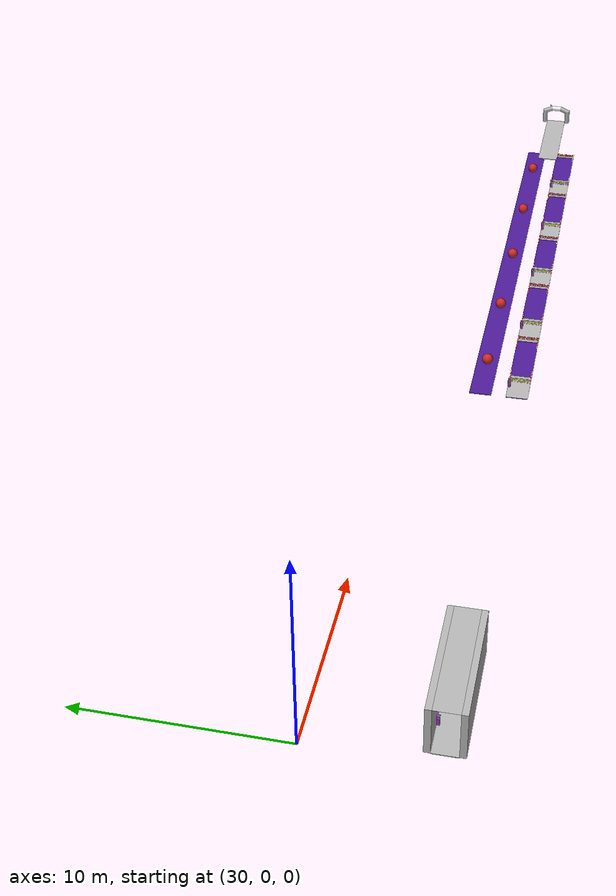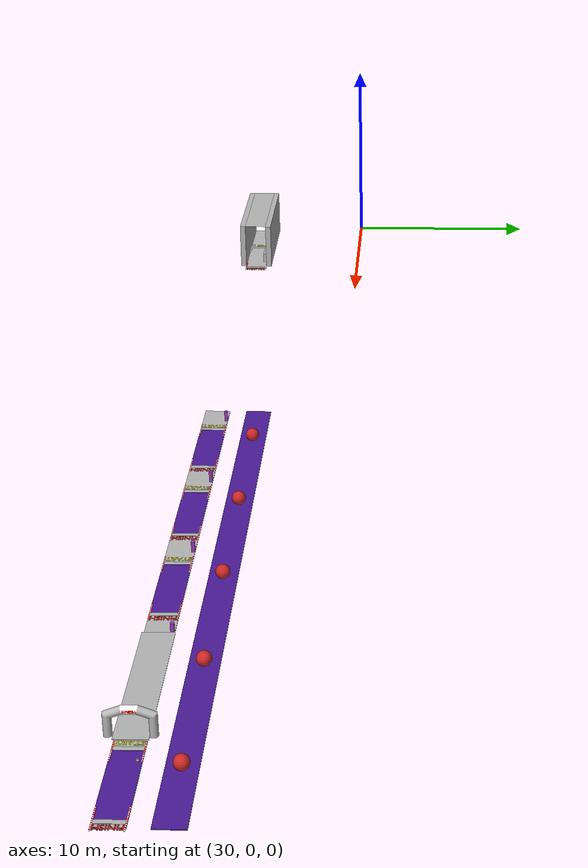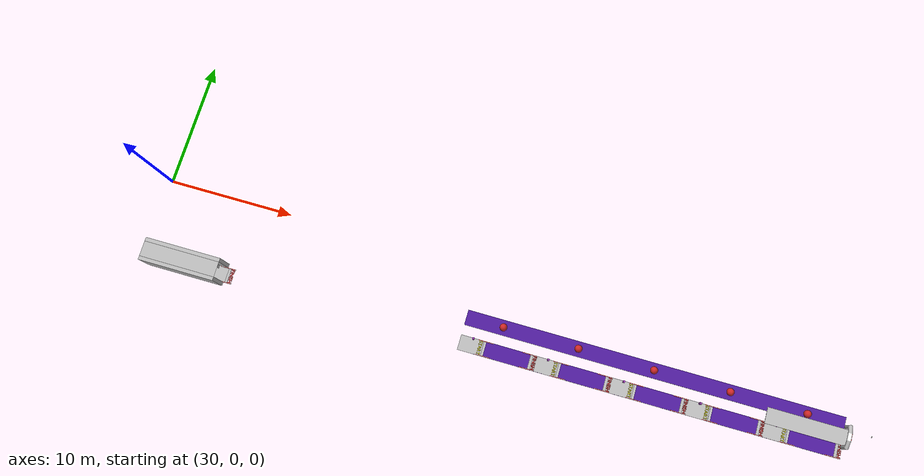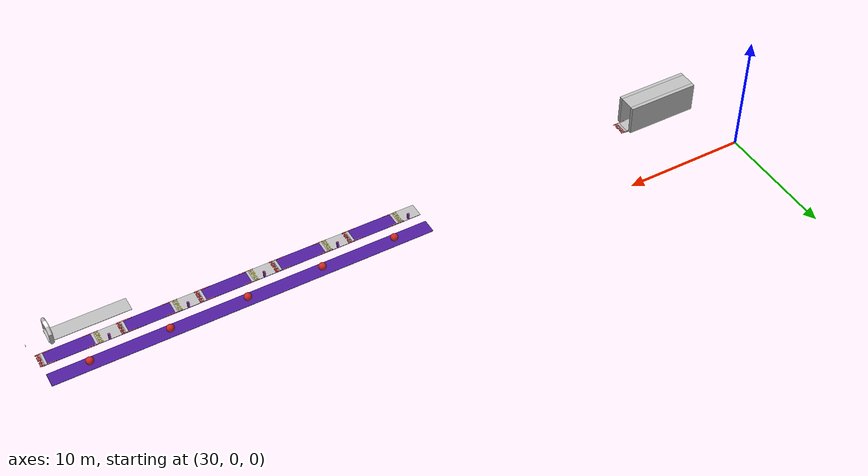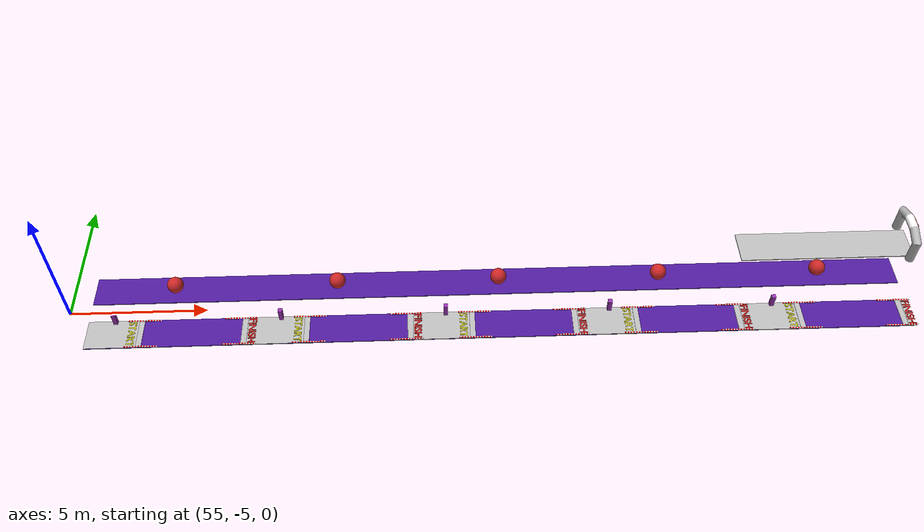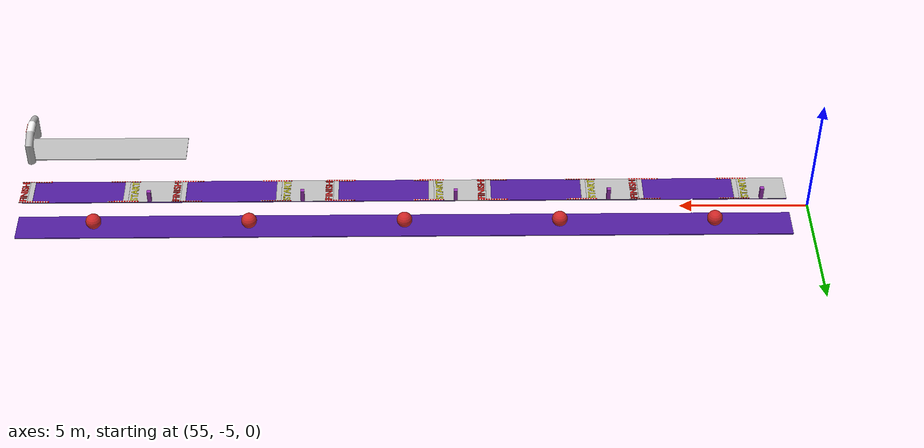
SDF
<sdf version="1.5">
 <world name="default">
  <scene>
   <sky><clouds><speed>3</speed></clouds></sky>
   <ambient>0.45 0.45 0.45 1</ambient>
   <background>0.65 0.65 0.65 1</background>
   <shadows>0</shadows>
  </scene>
  <include><uri>model://sun</uri></include>
  <include><name>ground1</name><pose>0 0 0.075 0 0 0</pose><uri>model://khnp_ground_plane</uri></include>
  <include><pose>30.6 -6 0 0 0 0</pose><uri>model://task_5_whole</uri></include>
  <include>
   <name>b1</name>
   <pose>34.6 -5.6 0.28 0 0 0</pose>
   <uri>model://box_manipulation,2,false_blue</uri>
  </include>
  <include>
   <name>b2</name>
   <pose>34.85 -5.6 0.28 0 0 0</pose>
   <uri>model://box_manipulation_2_true_yellow</uri>
  </include>
  <include>
   <name>b3</name>
   <pose>35.1 -5.6 0.28 0 0 0</pose>
   <uri>model://box_manipulation_2_false_red</uri>
  </include>
  <include>
   <name>b4</name>
   <pose>35.35 -5.6 0.28 0 0 0</pose>
   <uri>model://box_manipulation_2_false_orange</uri>
  </include>
  <include>
   <name>b5</name>
   <pose>35.6 -5.6 0.28 0 0 0</pose>
   <uri>model://box_manipulation_2_false_green</uri>
  </include>
  <include><name>ground2</name><pose>75.75 -6 0.055 0 0 0</pose><uri>model://khnp_ground_plane</uri></include>
  <include><pose>55.75 -6 0 0 0 0</pose><uri>model://task_3_whole</uri></include>
  <include><name>ds1</name><pose>58.75 -4 0.3 0 0 0</pose><uri>model://disturbance_sphere</uri></include>
  <include><name>ds2</name><pose>64.75 -4 0.3 0 0 0</pose><uri>model://disturbance_sphere</uri></include>
  <include><name>ds3</name><pose>70.75 -4 0.3 0 0 0</pose><uri>model://disturbance_sphere</uri></include>
  <include><name>ds4</name><pose>76.75 -4 0.3 0 0 0</pose><uri>model://disturbance_sphere</uri></include>
  <include><name>ds5</name><pose>82.75 -4 0.3 0 0 0</pose><uri>model://disturbance_sphere</uri></include>
  <include><name>finish_floor</name><pose>82 -5.2 2.968 0 0 0</pose><uri>model://floor_6m2</uri></include>
  <include><pose>84.8 -5.2 2.968 0 0 3.141592</pose><uri>model://last_finish</uri></include>
  <include><pose>86.55 -4.68 3.388 0 1.5708 0</pose><uri>model://finish_0_false</uri></include>
 </world>
</sdf>

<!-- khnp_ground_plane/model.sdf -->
<sdf version="1.5">
  <model name="khnp_ground_plane">
    <static>true</static>
    <link name="link">
      <pose>0 0 -0.1 0 0 0</pose>
      <collision name="collision">
        <geometry>
          <box>
            <size>40.0 40.0 0.1</size>
          </box>
        </geometry>
      </collision>
    </link>
  </model>
</sdf>

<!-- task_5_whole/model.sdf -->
<sdf version="1.5">
  <model name="task_5_whole">

    <include>
      <pose>1.5 0.52 0.42 0 1.5708 0</pose>
      <uri>model://manipulation_1_false</uri>
    </include>

    <include>
      <pose>3.8 0.36 0 0 0 0</pose>
      <uri>model://bookcase</uri>
    </include>

    <include>
      <name>w1</name>
      <pose>3 0.745 0 0 0 0</pose>
      <uri>model://indoorwall_6m</uri>
    </include>
    <include>
      <name>w2</name>
      <pose>3 -0.745 0 0 0 0</pose>
      <uri>model://indoorwall_6m</uri>
    </include>

    <include>
      <pose>3.0 0 0.005 0 0 0</pose>
      <uri>model://floor_6m</uri>
    </include>
    <include>
      <pose>3.0 0 0 0 0 0</pose>
      <uri>model://roof_6m</uri>
    </include>

    <include>
      <pose>1.575 0.525 0 0 0 0</pose>
      <uri>model://qr_pole</uri>
    </include>

    <include>
      <pose>2.5 0 0 0 0 -1.5708</pose>
      <uri>model://start_line</uri>
    </include>
    <include>
      <pose>5.5 0 0 0 0 -1.5708</pose>
      <uri>model://finish_line</uri>
    </include>

    <include>
      <pose>4.6 0 -0.02 0 0 0</pose>
      <uri>model://indoorfloor_3.4m</uri>
    </include>

  </model>
</sdf>

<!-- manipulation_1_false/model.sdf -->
<sdf version="1.5">
  <model name="manipulation_1_false">
    <static>true</static>
    <link name="link">
      <pose>0 0 0 0 0 0</pose>
      <collision name="collision">
        <geometry>
          <box>
            <size>0.1 0.1 0.01</size>
          </box>
        </geometry>
      </collision>
      <visual name="visual">
        <cast_shadows>false</cast_shadows>
        <geometry>
          <box>
            <size>0.1 0.1 0.01</size>
          </box>
        </geometry>
        <material>
          <script>
            <uri>model://manipulation_1_false/materials/scripts</uri>
            <uri>model://manipulation_1_false/materials/textures</uri>
            <name>vrc/manipulation_1_false</name>
          </script>
        </material>
      </visual>
    </link>
  </model>
</sdf>

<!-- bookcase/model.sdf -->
<sdf version="1.5">
  <model name="bookcase">
    <static>true</static>
    <pose>0 0 0 0 0 0</pose>
    <link name="link">
      <collision name="bookcaseC">
        <geometry>
          <mesh>
            <uri>model://bookcase/untitled.dae</uri>
            <scale>1.0 1.0 1.0</scale>
          </mesh>
        </geometry>
      </collision>
      <visual name="bookcaseV">
        <cast_shadows>false</cast_shadows>
        <geometry>
          <mesh>
            <uri>model://bookcase/untitled.dae</uri>
            <scale>1.0 1.0 1.0</scale>
          </mesh>
        </geometry>
      </visual>
    </link>
  </model>
</sdf>

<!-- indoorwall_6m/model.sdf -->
<sdf version="1.5">
  <model name="indoorwall_6m">
    <static>true</static>
    <link name="link">
      <pose>0 0 1.25 0 0 0</pose>
      <collision name="collision">
        <geometry>
          <box>
            <size>6.0 0.3 2.5</size>
          </box>
        </geometry>
      </collision>
      <visual name="visual">
        <cast_shadows>false</cast_shadows>
        <geometry>
          <box>
            <size>6.0 0.3 2.5</size>
          </box>
        </geometry>
        <material>
          <script>
            <uri>model://indoorwall_6m/materials/scripts</uri>
            <uri>model://indoorwall_6m/materials/textures</uri>
            <name>vrc/indoorwall_6m</name>
          </script>
        </material>
      </visual>
    </link>
  </model>
</sdf>

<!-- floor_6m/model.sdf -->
<sdf version="1.5">
  <model name="floor_6m">
    <static>true</static>
    <link name="link">
      <pose>0 0 -0.02 0 0 0</pose>
      <collision name="collision">
        <geometry>
          <box>
            <size>6.0 1.2 0.04</size>
          </box>
        </geometry>
      </collision>
      <visual name="visual">
        <geometry>
          <box>
            <size>6.0 1.2 0.04</size>
          </box>
        </geometry>
        <material>
          <script>
            <uri>model://floor_6m/materials/scripts</uri>
            <uri>model://floor_6m/materials/textures</uri>
            <name>vrc/floor_6m</name>
          </script>
        </material>
      </visual>
    </link>
  </model>
</sdf>

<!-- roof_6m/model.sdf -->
<sdf version='1.5'>
<model name='roof_6m'>
<static>true</static>
<link name="link">
   <pose frame=''>0 0 2.5 0 0 0</pose>
   <collision name='roof_firstC'>
    <geometry>
      <mesh>
        <scale>1.0 -1.0 1.0</scale>
        <uri>model://roof_6m/roof2.dae</uri>
      </mesh>
    </geometry>
  </collision>
  <visual name='roof_firstV'>
    <cast_shadows>false</cast_shadows>
    <geometry>
      <mesh>
        <scale>1.0 -1.0 1.0</scale>
        <uri>model://roof_6m/roof2.dae</uri>
      </mesh>
    </geometry>
  </visual>
</link>
</model>
</sdf>

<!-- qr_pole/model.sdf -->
<sdf version="1.5">
  <model name="qr_pole">
    <static>true</static>
    <link name="link">
      <pose>0 0 0.25 0 0 0</pose>
      <collision name="collision">
        <geometry>
          <box>
            <size>0.15 0.15 0.5</size>
          </box>
        </geometry>
      </collision>
      <visual name="visual">
        <cast_shadows>false</cast_shadows>
        <geometry>
          <box>
            <size>0.15 0.15 0.5</size>
          </box>
        </geometry>
        <material>
          <script>
            <uri>file://media/materials/scripts/gazebo.material</uri>
            <name>Gazebo/Purple</name>
          </script>
        </material>
      </visual>
    </link>
  </model>
</sdf>

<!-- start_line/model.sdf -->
<sdf version="1.5">
  <model name="start_line">

    <include>
      <name>start</name>
      <pose>-0.55 0 0 0 0 0</pose>
      <uri>model://start</uri>
    </include>
    <include>
      <name>line</name>
      <pose>0 0.45 0 0 0 0</pose>
      <uri>model://line</uri>
    </include>
    <include>
      <name>rline</name>
      <pose>-0.575 0.55 0.001 0 0 1.5708</pose>
      <uri>model://redline</uri>
    </include>
    <include>
      <name>rline2</name>
      <pose>0.575 0.55 0.001 0 0 1.5708</pose>
      <uri>model://redline</uri>
    </include>

  </model>
</sdf>

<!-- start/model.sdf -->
<sdf version='1.5'>
<model name='start'>
<static>true</static>
<link name="link">
   <pose frame=''>0 0 0.01 0 0 0</pose>
  <visual name='startV'>
    <cast_shadows>false</cast_shadows>
    <geometry>
      <mesh>
        <scale>1.0 1.0 1.0</scale>
        <uri>model://start/model.dae</uri>
      </mesh>
    </geometry>
    <material>
      <script>
        <name>start</name>
        <uri>model://start/model.dae</uri>
      </script>
    </material>
  </visual>
</link>
</model>
</sdf>

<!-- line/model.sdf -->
<sdf version='1.5'>
<model name='line'>
<static>true</static>
<link name="link">
   <pose frame=''>0 0 0.01 0 0 0</pose>
  <visual name='lineV'>
    <cast_shadows>false</cast_shadows>
    <geometry>
      <mesh>
        <scale>1.0 1.0 1.0</scale>
        <uri>model://line/line.dae</uri>
      </mesh>
    </geometry>
    <material>
      <script>
        <name>start</name>
        <uri>model://line/line.dae</uri>
      </script>
    </material>
  </visual>
</link>
</model>
</sdf>

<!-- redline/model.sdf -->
<sdf version='1.5'>
<model name='redline'>
<static>true</static>
<link name="redline">
   <pose frame=''>0 0 0 0 0 0</pose>
  <visual name='redlineV'>
    <cast_shadows>false</cast_shadows>
    <geometry>
      <mesh>
        <scale>1.0 1.0 1.0</scale>
        <uri>model://redline/redline2.dae</uri>
      </mesh>
    </geometry>
    <material>
      <script>
        <name>start</name>
        <uri>model://redline/redline2.dae</uri>
      </script>
    </material>
  </visual>
</link>
</model>
</sdf>

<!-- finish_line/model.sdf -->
<sdf version="1.5">
  <model name="finish_line">

    <include>
      <name>start</name>
      <pose>-0.55 0.85 0 0 0 0</pose>
      <uri>model://finish</uri>
    </include>
    <include>
      <name>line</name>
      <pose>0 0.7 0 0 0 0</pose>
      <uri>model://line</uri>
    </include>
    <include>
      <name>rline</name>
      <pose>-0.575 0.55 0.001 0 0 1.5708</pose>
      <uri>model://redline</uri>
    </include>
    <include>
      <name>rline2</name>
      <pose>0.575 0.55 0.001 0 0 1.5708</pose>
      <uri>model://redline</uri>
    </include>

  </model>
</sdf>

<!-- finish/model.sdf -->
<sdf version='1.5'>
<model name='finish'>
<static>true</static>
<link name="link">
   <pose frame=''>0 0 0.01 0 0 0</pose>
  <visual name='finishV'>
    <cast_shadows>false</cast_shadows>
    <geometry>
      <mesh>
        <scale>1.0 1.0 1.0</scale>
        <uri>model://finish/model.dae</uri>
      </mesh>
    </geometry>
    <material>
      <script>
        <name>finish</name>
        <uri>model://finish/model.dae</uri>
      </script>
    </material>
  </visual>
</link>
</model>
</sdf>

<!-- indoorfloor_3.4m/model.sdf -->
<sdf version="1.5">
  <model name="indoorfloor_3.4m">
    <static>true</static>
    <link name="link">
      <pose>0 0 0 0 0 0</pose>
      <collision name="collision">
        <geometry>
          <box>
            <size>3.4 1.2 0.06</size>
          </box>
        </geometry>
      </collision>
      <visual name="visual">
        <cast_shadows>false</cast_shadows>
        <geometry>
          <box>
            <size>3.4 1.2 0.06</size>
          </box>
        </geometry>
        <material>
          <script>
            <uri>model://indoorfloor_3.4m/materials/scripts</uri>
            <uri>model://indoorfloor_3.4m/materials/textures</uri>
            <name>vrc/indoorfloor_3.4m</name>
          </script>
        </material>
      </visual>
    </link>
  </model>
</sdf>

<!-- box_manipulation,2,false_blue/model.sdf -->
<sdf version='1.6'>
  <model name='box_manipulation,2,false_blue'>
    <link name='coll'>
      <inertial>
        <mass>0.3</mass>
        <inertia> <!-- inertias are tricky to compute -->
          <!-- http://gazebosim.org/tutorials?tut=inertia&cat=build_robot -->
          <ixx>0.00083</ixx>       <!-- for a box: ixx = 0.083 * mass * (y*y + z*z) -->
          <ixy>0.0</ixy>         <!-- for a box: ixy = 0 -->
          <ixz>0.0</ixz>         <!-- for a box: ixz = 0 -->
          <iyy>0.00083</iyy>       <!-- for a box: iyy = 0.083 * mass * (x*x + z*z) -->
          <iyz>0.0</iyz>         <!-- for a box: iyz = 0 -->
          <izz>0.00083</izz>       <!-- for a box: izz = 0.083 * mass * (x*x + y*y) -->
        </inertia>
      </inertial>
      <collision name='box_manipulation,2,false_blue_c'>
        <geometry>
          <box>
            <size>0.1 0.1 0.1</size>
          </box>
        </geometry>
        <surface>
          <friction>
            <torsional>
              <coefficient>1000</coefficient>
            </torsional>
            <ode>
              <mu>100</mu>
              <mu2>100</mu2>
            </ode>
          </friction>
          <contact>
            <ode>
              <kp>1000000000</kp>
              <kd>100000000</kd>
              <min_depth>0.003</min_depth>
              <max_vel>0.0</max_vel>
            </ode>
          </contact>
        </surface>
      </collision>
      <visual name='box_manipulation,2,false_blue_v'>
        <geometry>
          <box>
            <size>0.1 0.1 0.1</size>
          </box>
        </geometry>
        <material>
          <script>
            <uri>model://box_manipulation,2,false_blue/materials/scripts</uri>
            <uri>model://box_manipulation,2,false_blue/materials/textures</uri>
            <name>vrc/box_manipulation,2,false_blue</name>
          </script>
        </material>
      </visual>
    </link>
  </model>
</sdf>

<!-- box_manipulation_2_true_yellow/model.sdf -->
<sdf version='1.6'>
  <model name='box_manipulation_2_true_yellow'>
    <link name='box_manipulation_2_true_yellow'>
      <inertial>
        <mass>0.3</mass>
        <inertia> <!-- inertias are tricky to compute -->
          <!-- http://gazebosim.org/tutorials?tut=inertia&cat=build_robot -->
          <ixx>0.00083</ixx>       <!-- for a box: ixx = 0.083 * mass * (y*y + z*z) -->
          <ixy>0.0</ixy>         <!-- for a box: ixy = 0 -->
          <ixz>0.0</ixz>         <!-- for a box: ixz = 0 -->
          <iyy>0.00083</iyy>       <!-- for a box: iyy = 0.083 * mass * (x*x + z*z) -->
          <iyz>0.0</iyz>         <!-- for a box: iyz = 0 -->
          <izz>0.00083</izz>       <!-- for a box: izz = 0.083 * mass * (x*x + y*y) -->
        </inertia>
      </inertial>
      <collision name='box_manipulation_2_true_yellow_c'>
        <geometry>
          <box>
            <size>0.1 0.1 0.1</size>
          </box>
        </geometry>
        <surface>
          <friction>
            <torsional>
              <coefficient>1000</coefficient>
            </torsional>
            <ode>
              <mu>100</mu>
              <mu2>100</mu2>
            </ode>
          </friction>
          <contact>
            <ode>
              <kp>1000000000</kp>
              <kd>100000000</kd>
              <min_depth>0.003</min_depth>
              <max_vel>0.0</max_vel>
            </ode>
          </contact>
        </surface>
      </collision>
      <visual name='box_manipulation_2_true_yellow_v'>
        <geometry>
          <box>
            <size>0.1 0.1 0.1</size>
          </box>
        </geometry>
        <material>
          <script>
            <uri>model://box_manipulation_2_true_yellow/materials/scripts</uri>
            <uri>model://box_manipulation_2_true_yellow/materials/textures</uri>
            <name>vrc/box_manipulation_2_true_yellow</name>
          </script>
        </material>
      </visual>
    </link>
  </model>
</sdf>

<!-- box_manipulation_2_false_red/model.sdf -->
<sdf version='1.6'>
  <model name='box_manipulation_2_false_red'>
    <link name='box_manipulation_2_false_red'>
      <inertial>
        <mass>0.3</mass>
        <inertia> <!-- inertias are tricky to compute -->
          <!-- http://gazebosim.org/tutorials?tut=inertia&cat=build_robot -->
          <ixx>0.00083</ixx>       <!-- for a box: ixx = 0.083 * mass * (y*y + z*z) -->
          <ixy>0.0</ixy>         <!-- for a box: ixy = 0 -->
          <ixz>0.0</ixz>         <!-- for a box: ixz = 0 -->
          <iyy>0.00083</iyy>       <!-- for a box: iyy = 0.083 * mass * (x*x + z*z) -->
          <iyz>0.0</iyz>         <!-- for a box: iyz = 0 -->
          <izz>0.00083</izz>       <!-- for a box: izz = 0.083 * mass * (x*x + y*y) -->
        </inertia>
      </inertial>
      <collision name='box_manipulation_2_false_red_c'>
        <geometry>
          <box>
            <size>0.1 0.1 0.1</size>
          </box>
        </geometry>
        <surface>
          <friction>
            <torsional>
              <coefficient>1000</coefficient>
            </torsional>
            <ode>
              <mu>100</mu>
              <mu2>100</mu2>
            </ode>
          </friction>
          <contact>
            <ode>
              <kp>1000000000</kp>
              <kd>100000000</kd>
              <min_depth>0.003</min_depth>
              <max_vel>0.0</max_vel>
            </ode>
          </contact>
        </surface>
      </collision>
      <visual name='box_manipulation_2_false_red_v'>
        <geometry>
          <box>
            <size>0.1 0.1 0.1</size>
          </box>
        </geometry>
        <material>
          <script>
            <uri>model://box_manipulation_2_false_red/materials/scripts</uri>
            <uri>model://box_manipulation_2_false_red/materials/textures</uri>
            <name>vrc/box_manipulation_2_false_red</name>
          </script>
        </material>
      </visual>
    </link>
  </model>
</sdf>

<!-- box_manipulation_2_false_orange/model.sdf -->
<sdf version='1.6'>
  <model name='box_manipulation_2_false_orange'>
    <link name='box_manipulation_2_false_orange'>
      <inertial>
        <mass>0.3</mass>
        <inertia> <!-- inertias are tricky to compute -->
          <!-- http://gazebosim.org/tutorials?tut=inertia&cat=build_robot -->
          <ixx>0.00083</ixx>       <!-- for a box: ixx = 0.083 * mass * (y*y + z*z) -->
          <ixy>0.0</ixy>         <!-- for a box: ixy = 0 -->
          <ixz>0.0</ixz>         <!-- for a box: ixz = 0 -->
          <iyy>0.00083</iyy>       <!-- for a box: iyy = 0.083 * mass * (x*x + z*z) -->
          <iyz>0.0</iyz>         <!-- for a box: iyz = 0 -->
          <izz>0.00083</izz>       <!-- for a box: izz = 0.083 * mass * (x*x + y*y) -->
        </inertia>
      </inertial>
      <collision name='box_manipulation_2_false_orange_c'>
        <geometry>
          <box>
            <size>0.1 0.1 0.1</size>
          </box>
        </geometry>
        <surface>
          <friction>
            <torsional>
              <coefficient>1000</coefficient>
            </torsional>
            <ode>
              <mu>100</mu>
              <mu2>100</mu2>
            </ode>
          </friction>
          <contact>
            <ode>
              <kp>1000000000</kp>
              <kd>100000000</kd>
              <min_depth>0.003</min_depth>
              <max_vel>0.0</max_vel>
            </ode>
          </contact>
        </surface>
      </collision>
      <visual name='box_manipulation_2_false_orange_v'>
        <geometry>
          <box>
            <size>0.1 0.1 0.1</size>
          </box>
        </geometry>
        <material>
          <script>
            <uri>model://box_manipulation_2_false_orange/materials/scripts</uri>
            <uri>model://box_manipulation_2_false_orange/materials/textures</uri>
            <name>vrc/box_manipulation_2_false_orange</name>
          </script>
        </material>
      </visual>
    </link>
  </model>
</sdf>

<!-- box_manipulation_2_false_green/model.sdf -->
<sdf version='1.6'>
  <model name='box_manipulation_2_false_green'>
    <link name='box_manipulation_2_false_green'>
      <inertial>
        <mass>0.3</mass>
        <inertia> <!-- inertias are tricky to compute -->
          <!-- http://gazebosim.org/tutorials?tut=inertia&cat=build_robot -->
          <ixx>0.00083</ixx>       <!-- for a box: ixx = 0.083 * mass * (y*y + z*z) -->
          <ixy>0.0</ixy>         <!-- for a box: ixy = 0 -->
          <ixz>0.0</ixz>         <!-- for a box: ixz = 0 -->
          <iyy>0.00083</iyy>       <!-- for a box: iyy = 0.083 * mass * (x*x + z*z) -->
          <iyz>0.0</iyz>         <!-- for a box: iyz = 0 -->
          <izz>0.00083</izz>       <!-- for a box: izz = 0.083 * mass * (x*x + y*y) -->
        </inertia>
      </inertial>
      <collision name='box_manipulation_2_false_green_c'>
        <geometry>
          <box>
            <size>0.1 0.1 0.1</size>
          </box>
        </geometry>
        <surface>
          <friction>
            <torsional>
              <coefficient>1000</coefficient>
            </torsional>
            <ode>
              <mu>100</mu>
              <mu2>100</mu2>
            </ode>
          </friction>
          <contact>
            <ode>
              <kp>1000000000</kp>
              <kd>100000000</kd>
              <min_depth>0.003</min_depth>
              <max_vel>0.0</max_vel>
            </ode>
          </contact>
        </surface>
      </collision>
      <visual name='box_manipulation_2_false_green_v'>
        <geometry>
          <box>
            <size>0.1 0.1 0.1</size>
          </box>
        </geometry>
        <surface>
            <friction>
                <ode>
                    <mu>100</mu>
                    <mu2>100</mu2>
                </ode>
            </friction>
        </surface>
        <material>
          <script>
            <uri>model://box_manipulation_2_false_green/materials/scripts</uri>
            <uri>model://box_manipulation_2_false_green/materials/textures</uri>
            <name>vrc/box_manipulation_2_false_green</name>
          </script>
        </material>
      </visual>
    </link>
  </model>
</sdf>

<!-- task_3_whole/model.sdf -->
<sdf version="1.5">
  <model name="task_3_whole">

    <include>
      <pose>0.923 0.52 0.42 0 1.5708 0</pose>
      <uri>model://disturbance_1_false</uri>
    </include>
    <include>
      <pose>6.923 0.52 0.42 0 1.5708 0</pose>
      <uri>model://disturbance_2_false</uri>
    </include>
    <include>
      <pose>12.923 0.52 0.42 0 1.5708 0</pose>
      <uri>model://disturbance_3_false</uri>
    </include>
    <include>
      <pose>18.923 0.52 0.42 0 1.5708 0</pose>
      <uri>model://disturbance_4_false</uri>
    </include>
    <include>
      <pose>24.923 0.52 0.42 0 1.5708 0</pose>
      <uri>model://disturbance_5_false</uri>
    </include>

    <include>
      <name>floorx</name>
      <pose>15 2 0 0 0 0</pose>
      <uri>model://floor_30m</uri>
    </include>

    <include>
      <name>floorb</name>
      <pose>15 0 0 0 0 0</pose>
      <uri>model://floor_30m</uri>
    </include>

    <include>
      <name>s1</name>
      <pose>1.5 0 0 0 0 -1.5708</pose>
      <uri>model://start_line</uri>
    </include>
    <include>
      <name>s2</name>
      <pose>7.5 0 0 0 0 -1.5708</pose>
      <uri>model://start_line</uri>
    </include>
    <include>
      <name>s3</name>
      <pose>13.5 0 0 0 0 -1.5708</pose>
      <uri>model://start_line</uri>
    </include>
    <include>
      <name>s4</name>
      <pose>19.5 0 0 0 0 -1.5708</pose>
      <uri>model://start_line</uri>
    </include>
    <include>
      <name>s5</name>
      <pose>25.5 0 0 0 0 -1.5708</pose>
      <uri>model://start_line</uri>
    </include>

    <include>
      <name>f1</name>
      <pose>5 0 0 0 0 -1.5708</pose>
      <uri>model://finish_line</uri>
    </include>
    <include>
      <name>f2</name>
      <pose>11 0 0 0 0 -1.5708</pose>
      <uri>model://finish_line</uri>
    </include>
    <include>
      <name>f3</name>
      <pose>17 0 0 0 0 -1.5708</pose>
      <uri>model://finish_line</uri>
    </include>
    <include>
      <name>f4</name>
      <pose>23 0 0 0 0 -1.5708</pose>
      <uri>model://finish_line</uri>
    </include>
    <include>
      <name>f5</name>
      <pose>29 0 0 0 0 -1.5708</pose>
      <uri>model://finish_line</uri>
    </include>

    <include>
      <name>w1</name>
      <pose>1 0 0.005 0 0 0</pose>
      <uri>model://floor_2_concrete</uri>
    </include>
    <include>
      <name>w2</name>
      <pose>6.8 0 0.005 0 0 0</pose>
      <uri>model://floor_2.2_concrete</uri>
    </include>
    <include>
      <name>w3</name>
      <pose>12.8 0 0.005 0 0 0</pose>
      <uri>model://floor_2.2_concrete</uri>
    </include>
    <include>
      <name>w4</name>
      <pose>18.8 0 0.005 0 0 0</pose>
      <uri>model://floor_2.2_concrete</uri>
    </include>
    <include>
      <name>w5</name>
      <pose>24.8 0 0.005 0 0 0</pose>
      <uri>model://floor_2.2_concrete</uri>
    </include>
    <include>
      <name>w6</name>
      <pose>29.85 0 0.005 0 0 0</pose>
      <uri>model://floor_0.3_concrete</uri>
    </include>

    <include>
      <name>q1</name>
      <pose>1 0.525 0 0 0 0</pose>
      <uri>model://qr_pole</uri>
    </include>
    <include>
      <name>q2</name>
      <pose>7 0.525 0 0 0 0</pose>
      <uri>model://qr_pole</uri>
    </include>
    <include>
      <name>q3</name>
      <pose>13 0.525 0 0 0 0</pose>
      <uri>model://qr_pole</uri>
    </include>
    <include>
      <name>q4</name>
      <pose>19 0.525 0 0 0 0</pose>
      <uri>model://qr_pole</uri>
    </include>
    <include>
      <name>q5</name>
      <pose>25 0.525 0 0 0 0</pose>
      <uri>model://qr_pole</uri>
    </include>

  </model>
</sdf>

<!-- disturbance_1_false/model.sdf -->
<sdf version="1.5">
  <model name="disturbance_1_false">
    <static>true</static>
    <link name="link">
      <pose>0 0 0 0 0 0</pose>
      <collision name="collision">
        <geometry>
          <box>
            <size>0.1 0.1 0.01</size>
          </box>
        </geometry>
      </collision>
      <visual name="visual">
        <cast_shadows>false</cast_shadows>
        <geometry>
          <box>
            <size>0.1 0.1 0.01</size>
          </box>
        </geometry>
        <material>
          <script>
            <uri>model://disturbance_1_false/materials/scripts</uri>
            <uri>model://disturbance_1_false/materials/textures</uri>
            <name>vrc/disturbance_1_false</name>
          </script>
        </material>
      </visual>
    </link>
  </model>
</sdf>

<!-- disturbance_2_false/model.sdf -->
<sdf version="1.5">
  <model name="disturbance_2_false">
    <static>true</static>
    <link name="link">
      <pose>0 0 0 0 0 0</pose>
      <collision name="collision">
        <geometry>
          <box>
            <size>0.1 0.1 0.01</size>
          </box>
        </geometry>
      </collision>
      <visual name="visual">
        <cast_shadows>false</cast_shadows>
        <geometry>
          <box>
            <size>0.1 0.1 0.01</size>
          </box>
        </geometry>
        <material>
          <script>
            <uri>model://disturbance_2_false/materials/scripts</uri>
            <uri>model://disturbance_2_false/materials/textures</uri>
            <name>vrc/disturbance_2_false</name>
          </script>
        </material>
      </visual>
    </link>
  </model>
</sdf>

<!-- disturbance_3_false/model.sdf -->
<sdf version="1.5">
  <model name="disturbance_3_false">
    <static>true</static>
    <link name="link">
      <pose>0 0 0 0 0 0</pose>
      <collision name="collision">
        <geometry>
          <box>
            <size>0.1 0.1 0.01</size>
          </box>
        </geometry>
      </collision>
      <visual name="visual">
        <cast_shadows>false</cast_shadows>
        <geometry>
          <box>
            <size>0.1 0.1 0.01</size>
          </box>
        </geometry>
        <material>
          <script>
            <uri>model://disturbance_3_false/materials/scripts</uri>
            <uri>model://disturbance_3_false/materials/textures</uri>
            <name>vrc/disturbance_3_false</name>
          </script>
        </material>
      </visual>
    </link>
  </model>
</sdf>

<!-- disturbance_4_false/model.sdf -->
<sdf version="1.5">
  <model name="disturbance_4_false">
    <static>true</static>
    <link name="link">
      <pose>0 0 0 0 0 0</pose>
      <collision name="collision">
        <geometry>
          <box>
            <size>0.1 0.1 0.01</size>
          </box>
        </geometry>
      </collision>
      <visual name="visual">
        <cast_shadows>false</cast_shadows>
        <geometry>
          <box>
            <size>0.1 0.1 0.01</size>
          </box>
        </geometry>
        <material>
          <script>
            <uri>model://disturbance_4_false/materials/scripts</uri>
            <uri>model://disturbance_4_false/materials/textures</uri>
            <name>vrc/disturbance_4_false</name>
          </script>
        </material>
      </visual>
    </link>
  </model>
</sdf>

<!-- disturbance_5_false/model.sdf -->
<sdf version="1.5">
  <model name="disturbance_5_false">
    <static>true</static>
    <link name="link">
      <pose>0 0 0 0 0 0</pose>
      <collision name="collision">
        <geometry>
          <box>
            <size>0.1 0.1 0.01</size>
          </box>
        </geometry>
      </collision>
      <visual name="visual">
        <cast_shadows>false</cast_shadows>
        <geometry>
          <box>
            <size>0.1 0.1 0.01</size>
          </box>
        </geometry>
        <material>
          <script>
            <uri>model://disturbance_5_false/materials/scripts</uri>
            <uri>model://disturbance_5_false/materials/textures</uri>
            <name>vrc/disturbance_5_false</name>
          </script>
        </material>
      </visual>
    </link>
  </model>
</sdf>

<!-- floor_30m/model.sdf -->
<sdf version="1.5">
  <model name="floor_30m">
    <static>true</static>
    <link name="link">
      <pose>0 0 -0.02 0 0 0</pose>
      <collision name="collision">
        <geometry>
          <box>
            <size>30.0 1.2 0.04</size>
          </box>
        </geometry>
      </collision>
      <visual name="visual">
        <geometry>
          <box>
            <size>30.0 1.2 0.04</size>
          </box>
        </geometry>
        <material>
          <script>
            <name>Gazebo/Indigo</name>
            <uri>file://media/materials/scripts/gazebo.material</uri>
          </script>
        </material>
      </visual>
    </link>
  </model>
</sdf>

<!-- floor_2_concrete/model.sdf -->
<sdf version="1.5">
  <model name="floor_2_concrete">
    <static>true</static>
    <link name="link">
      <pose>0 0 -0.02 0 0 0</pose>
      <collision name="collision">
        <geometry>
          <box>
            <size>2 1.2 0.04</size>
          </box>
        </geometry>
      </collision>
      <visual name="visual">
        <geometry>
          <box>
            <size>2 1.2 0.04</size>
          </box>
        </geometry>
        <material>
          <script>
            <uri>model://floor_2_concrete/materials/scripts</uri>
            <uri>model://floor_2_concrete/materials/textures</uri>
            <name>vrc/floor_2_concrete</name>
          </script>
        </material>
      </visual>
    </link>
  </model>
</sdf>

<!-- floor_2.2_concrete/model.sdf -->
<sdf version="1.5">
  <model name="floor_2.2_concrete">
    <static>true</static>
    <link name="link">
      <pose>0 0 -0.02 0 0 0</pose>
      <collision name="collision">
        <geometry>
          <box>
            <size>2.2 1.2 0.04</size>
          </box>
        </geometry>
      </collision>
      <visual name="visual">
        <geometry>
          <box>
            <size>2.2 1.2 0.04</size>
          </box>
        </geometry>
        <material>
          <script>
            <uri>model://floor_2.2_concrete/materials/scripts</uri>
            <uri>model://floor_2.2_concrete/materials/textures</uri>
            <name>vrc/floor_2.2_concrete</name>
          </script>
        </material>
      </visual>
    </link>
  </model>
</sdf>

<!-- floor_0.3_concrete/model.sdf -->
<sdf version="1.5">
  <model name="floor_0.3_concrete">
    <static>true</static>
    <link name="link">
      <pose>0 0 -0.02 0 0 0</pose>
      <collision name="collision">
        <geometry>
          <box>
            <size>0.3 1.2 0.04</size>
          </box>
        </geometry>
      </collision>
      <visual name="visual">
        <geometry>
          <box>
            <size>0.3 1.2 0.04</size>
          </box>
        </geometry>
        <material>
          <script>
            <uri>model://floor_0.3_concrete/materials/scripts</uri>
            <uri>model://floor_0.3_concrete/materials/textures</uri>
            <name>vrc/floor_0.3_concrete</name>
          </script>
        </material>
      </visual>
    </link>
  </model>
</sdf>

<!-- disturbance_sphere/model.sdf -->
<sdf version="1.5">
  <model name="disturbance_sphere">
    <static>false</static>
    <self_collide>true</self_collide>
    <link name="link">
      <inertial>
        <mass>10.0</mass>
          <inertia>
            <ixx>1.44</ixx>
            <ixy>0.0</ixy>
            <ixz>0.0</ixz>
            <iyy>1.44</iyy>
            <iyz>0.0</iyz>
            <izz>1.44</izz>
          </inertia>
      </inertial>
      <collision name="ccc">
        <geometry>
          <sphere>
            <radius>0.3</radius>
          </sphere>
        </geometry>
      </collision>
      <visual name="vvv">
        <cast_shadows>false</cast_shadows>
        <geometry>
          <sphere>
            <radius>0.3</radius>
          </sphere>
        </geometry>
        <material>
          <script>
            <name>Gazebo/Red</name>
            <uri>file://media/materials/scripts/gazebo.material</uri>
          </script>
        </material>
      </visual>
    </link>
  </model>
</sdf>

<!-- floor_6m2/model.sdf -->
<sdf version="1.5">
  <model name="floor_6m2">
    <static>true</static>
    <link name="link">
      <pose>0 0 -0.02 0 0 0</pose>
      <collision name="collision">
        <geometry>
          <box>
            <size>6.0 1.2 0.04</size>
          </box>
        </geometry>
      </collision>
      <visual name="visual">
        <geometry>
          <box>
            <size>6.0 1.2 0.04</size>
          </box>
        </geometry>
        <material>
          <script>
            <uri>model://floor_6m2/materials/scripts</uri>
            <uri>model://floor_6m2/materials/textures</uri>
            <name>vrc/floor_6m2</name>
          </script>
        </material>
      </visual>
    </link>
  </model>
</sdf>

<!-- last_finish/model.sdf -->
<sdf version='1.5'>
<model name='last_finish'>
<static>true</static>
<link name="link">
   <pose frame=''>0 0 0.01 0 0 0</pose>
  <visual name='last_finishV'>
    <cast_shadows>false</cast_shadows>
    <geometry>
      <mesh>
        <scale>1.0 1.0 1.0</scale>
        <uri>model://last_finish/last_finish2.dae</uri>
      </mesh>
    </geometry>
    <material>
      <script>
        <name>last_finish</name>
        <uri>model://last_finish/last_finish2.dae</uri>
      </script>
    </material>
  </visual>
</link>
</model>
</sdf>

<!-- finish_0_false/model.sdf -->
<sdf version="1.5">
  <model name="finish_0_false">
    <static>true</static>
    <link name="link">
      <pose>0 0 0 0 0 0</pose>
      <collision name="collision">
        <geometry>
          <box>
            <size>0.1 0.1 0.01</size>
          </box>
        </geometry>
      </collision>
      <visual name="visual">
        <cast_shadows>false</cast_shadows>
        <geometry>
          <box>
            <size>0.1 0.1 0.01</size>
          </box>
        </geometry>
        <material>
          <script>
            <uri>model://finish_0_false/materials/scripts</uri>
            <uri>model://finish_0_false/materials/textures</uri>
            <name>vrc/finish_0_false</name>
          </script>
        </material>
      </visual>
    </link>
  </model>
</sdf>
